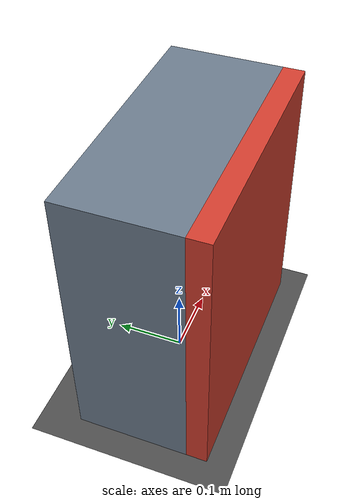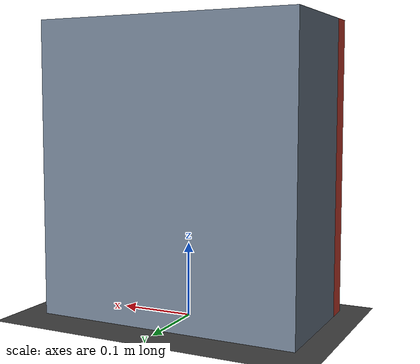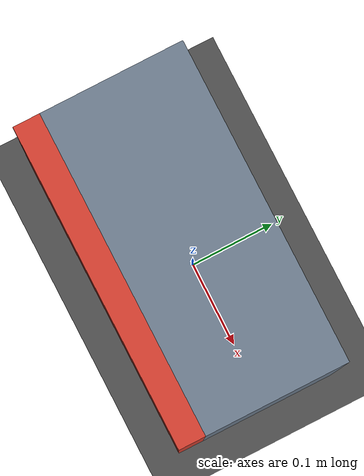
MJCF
<mujoco model="crosssim_articulated_hinge">
  <compiler angle="radian" coordinate="local"/>
  <option gravity="0.0 0.0 -9.81" timestep="0.01"/>
  <visual><headlight ambient="0.45 0.45 0.45" diffuse="0.8 0.8 0.8" specular="0.15 0.15 0.15"/></visual>
  <asset>
  </asset>
  <custom>
    <text name="agenticsim_task_contract" data="{&quot;action&quot;:{&quot;interface&quot;:&quot;zero_action&quot;,&quot;operations&quot;:[]},&quot;observation&quot;:{&quot;state&quot;:[&quot;object_pose&quot;,&quot;contact&quot;]},&quot;reset&quot;:{&quot;object_poses&quot;:&quot;from_env_spec&quot;},&quot;success&quot;:[{&quot;type&quot;:&quot;settled&quot;}],&quot;termination&quot;:[{&quot;steps&quot;:120,&quot;type&quot;:&quot;timeout&quot;}]}"/>
    <text name="agenticsim_object_ids" data="[&quot;cabinet&quot;]"/>
    <text name="agenticsim_sensors" data="[]"/>
  </custom>
  <contact>
    <exclude body1="cabinet" body2="cabinet__door"/>
  </contact>
  <worldbody>
    <geom name="ground" type="plane" size="3 3 0.1" rgba="0.3 0.3 0.3 1"/>
    <light name="key_light" pos="0 -1 2" dir="0 0 -1" diffuse="0.8 0.8 0.8"/>
<body name="cabinet" pos="0 0 0.2" quat="1 0 0 0"><geom name="cabinet__cabinet_base_geom" type="box" size="0.18 0.08 0.2" rgba="0.42 0.48 0.55 1" pos="0 0 0" quat="1 0 0 0" /><body name="cabinet__door" pos="0 -0.095 0" quat="1 0 0 0"><joint name="door_hinge" type="hinge" axis="0 0 1" damping="0.1" range="-1.2 0" limited="true" /><geom name="cabinet__door_geom" type="box" size="0.18 0.015 0.2" rgba="0.82 0.24 0.18 1" pos="0 0 0" quat="1 0 0 0" /></body></body>
  </worldbody>
</mujoco>
